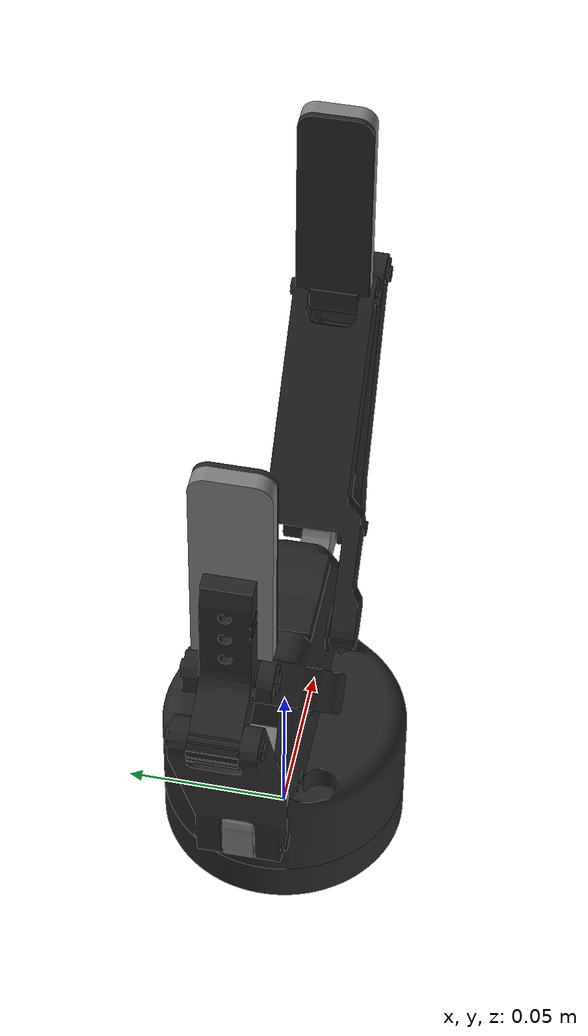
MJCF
<mujoco model="robotiq_2f140">
  <compiler angle="radian" meshdir="assets" autolimits="true"/>

  <option cone="elliptic" impratio="10"/>

  <asset>
    <material name="metal" rgba="0.58 0.58 0.58 1"/>
    <material name="silicone" rgba="0.1882 0.1882 0.1882 1"/>
    <material name="gray" rgba="0.4627 0.4627 0.4627 1"/>
    <material name="black" rgba="0.149 0.149 0.149 1"/>

    <mesh class="2f140" file="base_mount.stl"/>
    <mesh class="2f140" file="base.stl"/>
    <mesh class="2f140" file="driver.stl"/>
    <mesh class="2f140" file="coupler.stl"/>
    <mesh class="2f140" file="follower.stl"/>
    <mesh class="2f140" file="pad.stl"/>
    <mesh class="2f140" file="silicone_pad.stl"/>
    <mesh class="2f140" file="spring_link.stl"/>
  </asset>

  <default>
    <default class="2f140">
      <mesh scale="0.001 0.001 0.001"/>
      <general biastype="affine"/>

      <joint axis="1 0 0"/>
      <default class="driver">
        <joint range="0 0.73" armature="0.005" damping="0.1" solimplimit="0.95 0.99 0.001" solreflimit="0.005 1"/>
      </default>
      <default class="follower">
        <joint range="-0.872664 0.872664" armature="0.001" pos="0 -0.018 0.0065" solimplimit="0.95 0.99 0.001" solreflimit="0.005 1"/>
      </default>
      <default class="spring_link">
        <joint range="-0.29670597283 0.8" armature="0.001" stiffness="0.05" springref="2.62" damping="0.00125"/>
      </default>
      <default class="coupler">
        <joint range="-1.57 0" armature="0.001" solimplimit="0.95 0.99 0.001" solreflimit="0.005 1"/>
      </default>

      <default class="visual">
        <geom type="mesh" contype="0" conaffinity="0" group="2"/>
      </default>
      <default class="collision">
        <geom type="mesh" group="3"/>
        <default class="pad_box1">
          <geom mass="0" type="box" pos="0 -0.0026 0.0543" size="0.011 0.004 0.0109" friction="0.7"
            solimp="0.95 0.99 0.001" solref="0.004 1" priority="1" rgba="0.55 0.55 0.55 1"/>
        </default>
        <default class="pad_box2">
          <geom mass="0" type="box" pos="0 -0.0026 0.0327" size="0.011 0.004 0.0109" friction="0.6"
            solimp="0.95 0.99 0.001" solref="0.004 1" priority="1" rgba="0.45 0.45 0.45 1"/>
        </default>
        <default class="pad_box3">
          <geom mass="0" type="box" pos="0 -0.0026 0.0109" size="0.011 0.004 0.0109" friction="0.6"
            solimp="0.95 0.99 0.001" solref="0.004 1" priority="1" rgba="0.45 0.45 0.45 1"/>
        </default>
      </default>
    </default>
  </default>

  <worldbody>
    <body name="base_mount" pos="0 0 0.007" childclass="2f140">
      <geom class="visual" mesh="base_mount" material="black"/>
      <geom class="collision" mesh="base_mount"/>
      <body name="base" pos="0 0 0.0038" quat="1 0 0 -1">
        <geom class="visual" mesh="base" material="black"/>
        <geom class="collision" mesh="base"/>
        <site name="pinch" pos="0 0 0.145" type="sphere" group="5" rgba="0.9 0.9 0.9 1" size="0.005"/>
        <!-- Right-hand side 4-bar linkage -->
        <body name="right_driver" pos="0 0.030601 0.054905">
          <joint name="right_driver_joint" class="driver"/>
          <geom class="visual" mesh="driver" material="gray"/>
          <geom class="collision" mesh="driver"/>
          <body name="right_coupler" pos="0 0.0316301 -0.0027563">
            <joint name="right_coupler_joint" class="coupler"/>
            <geom class="visual" mesh="coupler" material="black"/>
            <geom class="collision" mesh="coupler"/>
          </body>
        </body>
        <body name="right_spring_link" pos="0 0.0127 0.06142">
          <joint name="right_spring_link_joint" class="spring_link"/>
          <geom class="visual" mesh="spring_link" material="black"/>
          <geom class="collision" mesh="spring_link"/>
          <body name="right_follower" pos="0 0.080465 0.071496">
            <joint name="right_follower_joint" class="follower"/>
            <geom class="visual" mesh="follower" material="black"/>
            <geom class="collision" mesh="follower"/>
            <body name="right_pad" pos="0 -0.0189 0.01352">
              <geom class="pad_box1" name="right_pad1"/>
              <geom class="pad_box2" name="right_pad2"/>
              <geom class="pad_box3" name="right_pad3"/>
              <geom class="visual" mesh="pad"/>
              <body name="right_silicone_pad">
                <geom class="visual" mesh="silicone_pad" material="black"/>
              </body>
            </body>
          </body>
        </body>
        <!-- Left-hand side 4-bar linkage -->
        <body name="left_driver" pos="0 -0.030601 0.054905" quat="0 0 0 1">
          <joint name="left_driver_joint" class="driver"/>
          <geom class="visual" mesh="driver" material="gray"/>
          <geom class="collision" mesh="driver"/>
          <body name="left_coupler" pos="0 0.0316301 -0.0027563">
            <joint name="left_coupler_joint" class="coupler"/>
            <geom class="visual" mesh="coupler" material="black"/>
            <geom class="collision" mesh="coupler"/>
          </body>
        </body>
        <body name="left_spring_link" pos="0 -0.0127 0.06142" quat="0 0 0 1">
          <joint name="left_spring_link_joint" class="spring_link"/>
          <geom class="visual" mesh="spring_link" material="black"/>
          <geom class="collision" mesh="spring_link"/>
          <body name="left_follower" pos="0 0.080465 0.071496">
            <joint name="left_follower_joint" class="follower"/>
            <geom class="visual" mesh="follower" material="black"/>
            <geom class="collision" mesh="follower"/>
            <body name="left_pad" pos="0 -0.0189 0.01352">
              <geom class="pad_box1" name="left_pad1"/>
              <geom class="pad_box2" name="left_pad2"/>
              <geom class="pad_box3" name="left_pad3"/>
              <geom class="visual" mesh="pad"/>
              <body name="left_silicone_pad">
                <geom class="visual" mesh="silicone_pad" material="black"/>
              </body>
            </body>
          </body>
        </body>
      </body>
    </body>
  </worldbody>

  <contact>
    <exclude body1="base" body2="left_driver"/>
    <exclude body1="base" body2="right_driver"/>
    <exclude body1="base" body2="left_spring_link"/>
    <exclude body1="base" body2="right_spring_link"/>
    <exclude body1="right_coupler" body2="right_follower"/>
    <exclude body1="left_coupler" body2="left_follower"/>
  </contact>

  <tendon>
    <fixed name="split">
      <joint joint="right_driver_joint" coef="0.5"/>
      <joint joint="left_driver_joint" coef="0.5"/>
    </fixed>
  </tendon>

  <equality>
    <connect anchor="0 0 0" body1="right_follower" body2="right_coupler" solimp="0.95 0.99 0.001" solref="0.005 1"/>
    <connect anchor="0 0 0" body1="left_follower" body2="left_coupler" solimp="0.95 0.99 0.001" solref="0.005 1"/>
    <joint joint1="right_driver_joint" joint2="left_driver_joint" polycoef="0 1 0 0 0" solimp="0.95 0.99 0.001"
      solref="0.005 1"/>
  </equality>

  <actuator>
    <general class="2f140" name="fingers_actuator" tendon="split" forcerange="-5 5" ctrlrange="0 255"
      gainprm="0.28627451 0 0" biasprm="0 -100 -10"/>
  </actuator>
</mujoco>
